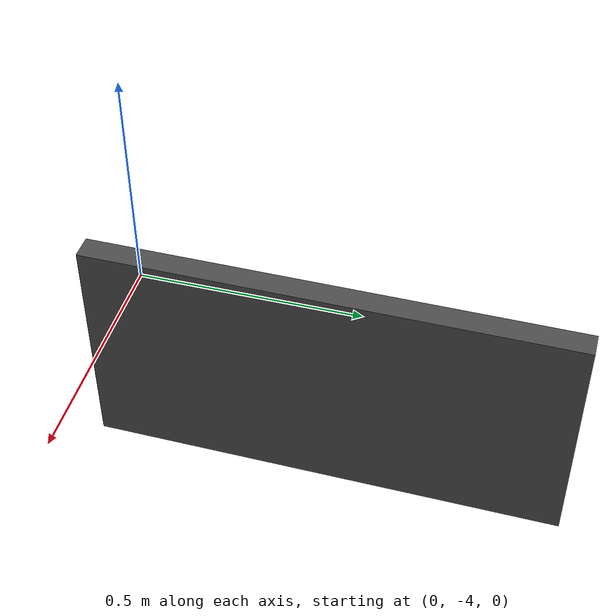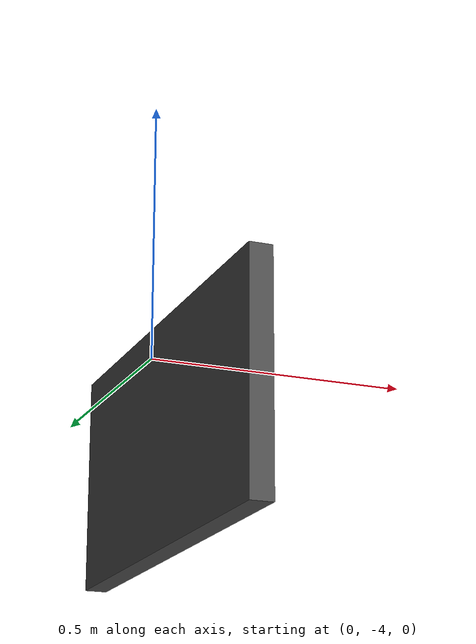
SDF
<?xml version='1.0'?>
<sdf version='1.7'>
  <model name='parede_1m_01'>
    <pose>0.711496 -3.02246 0 0 -0 0</pose>
    <link name='Wall_11'>
      <collision name='Wall_11_Collision'>
        <geometry>
          <box>
            <size>1 0.05 0.5</size>
          </box>
        </geometry>
        <pose>0 0 0 0 -0 0</pose>
      </collision>
      <visual name='Wall_11_Visual'>
        <pose>0 0 0 0 -0 0</pose>
        <geometry>
          <box>
            <size>1 0.05 0.5</size>
          </box>
        </geometry>
        <material>
          <script>
            <uri>file://media/materials/scripts/gazebo.material</uri>
            <name>Gazebo/DarkGrey</name>
          </script>
          <ambient>1 1 1 1</ambient>
        </material>
        <meta>
          <layer>0</layer>
        </meta>
      </visual>
      <pose>-0.5 -0.5 0 0 0 -1.58</pose>
    </link>
    <static>1</static>
  </model>
</sdf>
